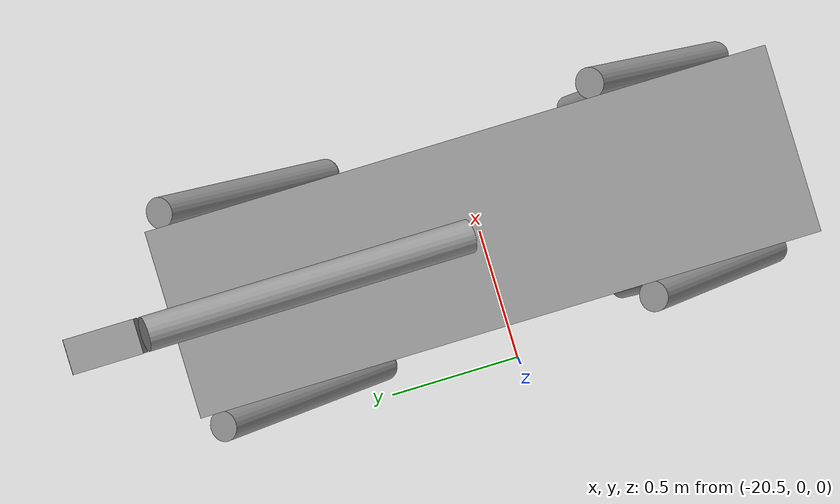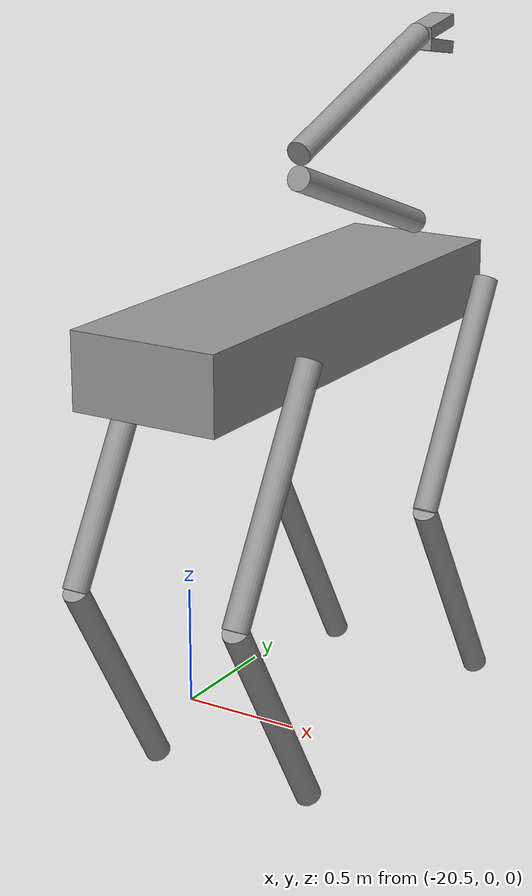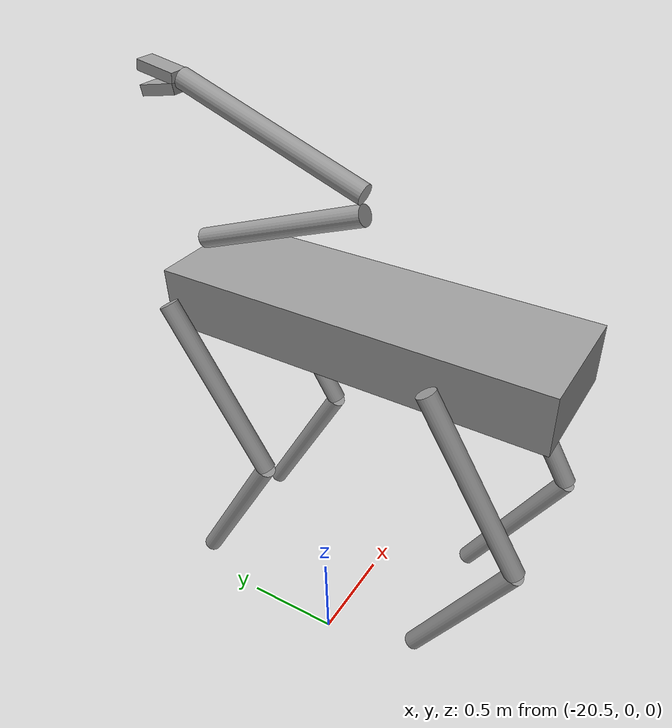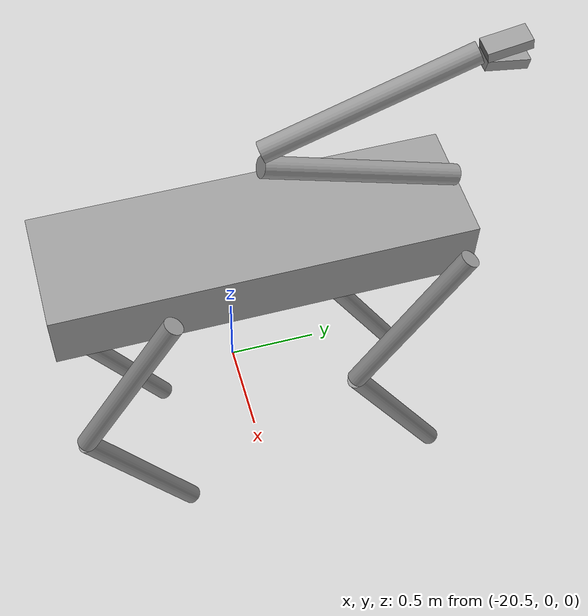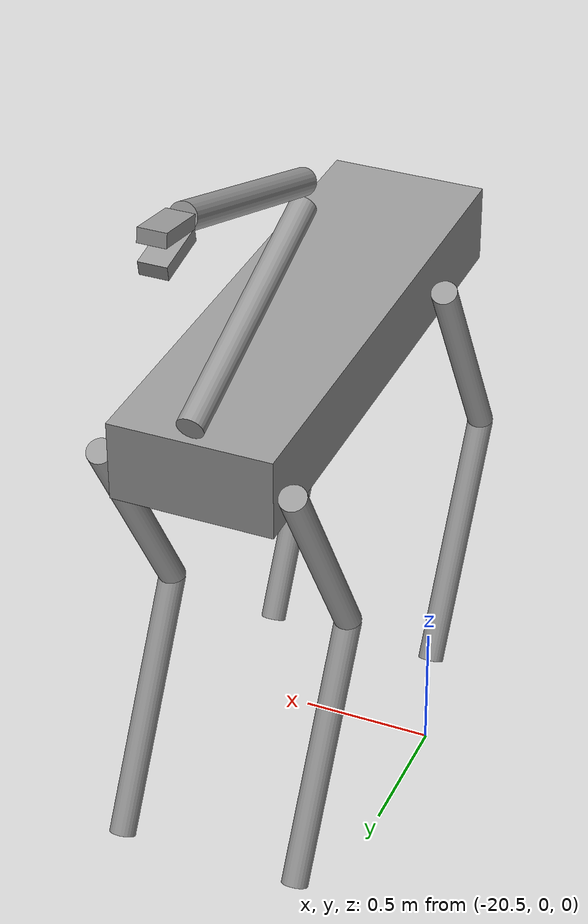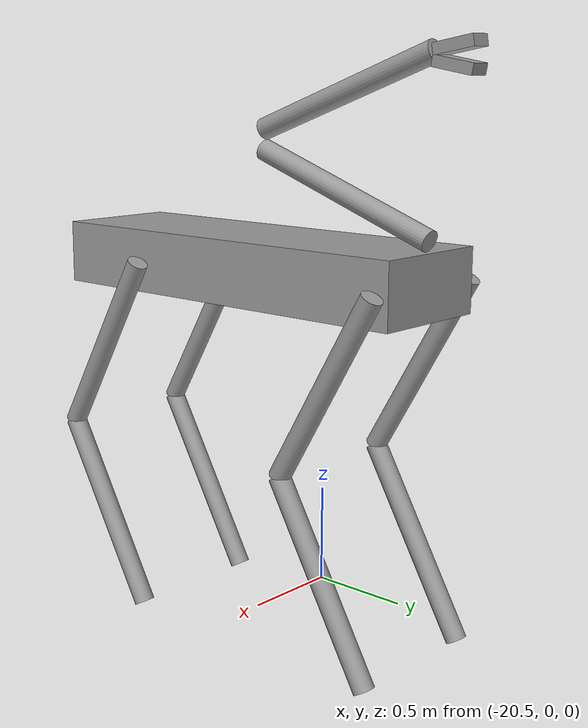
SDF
<?xml version='1.0'?>
<sdf version='1.6'>
  <model name='dog'>
    <link name='link_0_clone'>
      <pose frame=''>-19.65 0.706699 1.29904 -0.523599 0 0</pose>
      <inertial>
        <mass>1</mass>
        <inertia>
          <ixx>0.145833</ixx>
          <ixy>0</ixy>
          <ixz>0</ixz>
          <iyy>0.145833</iyy>
          <iyz>0</iyz>
          <izz>0.125</izz>
        </inertia>
        <pose frame=''>0 0 0 0 -0 0</pose>
      </inertial>
      <self_collide>0</self_collide>
      <kinematic>0</kinematic>
      <gravity>1</gravity>
      <visual name='visual'>
        <pose frame=''>0 0 0 0 -0 0</pose>
        <geometry>
          <cylinder>
            <radius>0.05</radius>
            <length>1</length>
          </cylinder>
        </geometry>
        <material>
          <lighting>1</lighting>
          <script>
            <uri>file://media/materials/scripts/gazebo.material</uri>
            <name>Gazebo/Grey</name>
          </script>
          <shader type='pixel'>
            <normal_map>__default__</normal_map>
          </shader>
          <ambient>0.3 0.3 0.3 1</ambient>
          <diffuse>0.7 0.7 0.7 1</diffuse>
          <specular>0.01 0.01 0.01 1</specular>
          <emissive>0 0 0 1</emissive>
        </material>
        <transparency>0</transparency>
        <cast_shadows>1</cast_shadows>
      </visual>
      <collision name='collision'>
        <laser_retro>0</laser_retro>
        <max_contacts>10</max_contacts>
        <pose frame=''>0 0 0 0 -0 0</pose>
        <geometry>
          <cylinder>
            <radius>0.05</radius>
            <length>1</length>
          </cylinder>
        </geometry>
        <surface>
          <friction>
            <ode>
              <mu>1</mu>
              <mu2>1</mu2>
              <fdir1>0 0 0</fdir1>
              <slip1>0</slip1>
              <slip2>0</slip2>
            </ode>
            <torsional>
              <coefficient>1</coefficient>
              <patch_radius>0</patch_radius>
              <surface_radius>0</surface_radius>
              <use_patch_radius>1</use_patch_radius>
              <ode>
                <slip>0</slip>
              </ode>
            </torsional>
          </friction>
          <bounce>
            <restitution_coefficient>0</restitution_coefficient>
            <threshold>1e+06</threshold>
          </bounce>
          <contact>
            <collide_without_contact>0</collide_without_contact>
            <collide_without_contact_bitmask>1</collide_without_contact_bitmask>
            <collide_bitmask>1</collide_bitmask>
            <ode>
              <soft_cfm>0</soft_cfm>
              <soft_erp>0.2</soft_erp>
              <kp>1e+13</kp>
              <kd>1</kd>
              <max_vel>0.01</max_vel>
              <min_depth>0</min_depth>
            </ode>
            <bullet>
              <split_impulse>1</split_impulse>
              <split_impulse_penetration_threshold>-0.01</split_impulse_penetration_threshold>
              <soft_cfm>0</soft_cfm>
              <soft_erp>0.2</soft_erp>
              <kp>1e+13</kp>
              <kd>1</kd>
            </bullet>
          </contact>
        </surface>
      </collision>
    </link>
    <link name='link_0_clone_0'>
      <pose frame=''>-19.65 0.706699 0.433013 0.523599 -0 0</pose>
      <inertial>
        <mass>1</mass>
        <inertia>
          <ixx>0.145833</ixx>
          <ixy>0</ixy>
          <ixz>0</ixz>
          <iyy>0.145833</iyy>
          <iyz>0</iyz>
          <izz>0.125</izz>
        </inertia>
        <pose frame=''>0 0 0 0 -0 0</pose>
      </inertial>
      <self_collide>0</self_collide>
      <kinematic>0</kinematic>
      <gravity>1</gravity>
      <visual name='visual'>
        <pose frame=''>0 0 0 0 -0 0</pose>
        <geometry>
          <cylinder>
            <radius>0.05</radius>
            <length>1</length>
          </cylinder>
        </geometry>
        <material>
          <lighting>1</lighting>
          <script>
            <uri>file://media/materials/scripts/gazebo.material</uri>
            <name>Gazebo/Grey</name>
          </script>
          <shader type='pixel'>
            <normal_map>__default__</normal_map>
          </shader>
          <ambient>0.3 0.3 0.3 1</ambient>
          <diffuse>0.7 0.7 0.7 1</diffuse>
          <specular>0.01 0.01 0.01 1</specular>
          <emissive>0 0 0 1</emissive>
        </material>
        <transparency>0</transparency>
        <cast_shadows>1</cast_shadows>
      </visual>
      <collision name='collision'>
        <laser_retro>0</laser_retro>
        <max_contacts>10</max_contacts>
        <pose frame=''>0 0 0 0 -0 0</pose>
        <geometry>
          <cylinder>
            <radius>0.05</radius>
            <length>1</length>
          </cylinder>
        </geometry>
        <surface>
          <friction>
            <ode>
              <mu>1</mu>
              <mu2>1</mu2>
              <fdir1>0 0 0</fdir1>
              <slip1>0</slip1>
              <slip2>0</slip2>
            </ode>
            <torsional>
              <coefficient>1</coefficient>
              <patch_radius>0</patch_radius>
              <surface_radius>0</surface_radius>
              <use_patch_radius>1</use_patch_radius>
              <ode>
                <slip>0</slip>
              </ode>
            </torsional>
          </friction>
          <bounce>
            <restitution_coefficient>0</restitution_coefficient>
            <threshold>1e+06</threshold>
          </bounce>
          <contact>
            <collide_without_contact>0</collide_without_contact>
            <collide_without_contact_bitmask>1</collide_without_contact_bitmask>
            <collide_bitmask>1</collide_bitmask>
            <ode>
              <soft_cfm>0</soft_cfm>
              <soft_erp>0.2</soft_erp>
              <kp>1e+13</kp>
              <kd>1</kd>
              <max_vel>0.01</max_vel>
              <min_depth>0</min_depth>
            </ode>
            <bullet>
              <split_impulse>1</split_impulse>
              <split_impulse_penetration_threshold>-0.01</split_impulse_penetration_threshold>
              <soft_cfm>0</soft_cfm>
              <soft_erp>0.2</soft_erp>
              <kp>1e+13</kp>
              <kd>1</kd>
            </bullet>
          </contact>
        </surface>
      </collision>
    </link>
    <link name='link_0_clone_0_clone'>
      <pose frame=''>-20.35 -0.706699 0.433013 0.523599 -0 0</pose>
      <inertial>
        <mass>1</mass>
        <inertia>
          <ixx>0.145833</ixx>
          <ixy>0</ixy>
          <ixz>0</ixz>
          <iyy>0.145833</iyy>
          <iyz>0</iyz>
          <izz>0.125</izz>
        </inertia>
        <pose frame=''>0 0 0 0 -0 0</pose>
      </inertial>
      <self_collide>0</self_collide>
      <kinematic>0</kinematic>
      <visual name='visual'>
        <pose frame=''>0 0 0 0 -0 0</pose>
        <geometry>
          <cylinder>
            <radius>0.05</radius>
            <length>1</length>
          </cylinder>
        </geometry>
        <material>
          <lighting>1</lighting>
          <script>
            <uri>file://media/materials/scripts/gazebo.material</uri>
            <name>Gazebo/Grey</name>
          </script>
          <shader type='pixel'>
            <normal_map>__default__</normal_map>
          </shader>
          <ambient>0.3 0.3 0.3 1</ambient>
          <diffuse>0.7 0.7 0.7 1</diffuse>
          <specular>0.01 0.01 0.01 1</specular>
          <emissive>0 0 0 1</emissive>
        </material>
        <transparency>0</transparency>
        <cast_shadows>1</cast_shadows>
      </visual>
      <collision name='collision'>
        <laser_retro>0</laser_retro>
        <max_contacts>10</max_contacts>
        <pose frame=''>0 0 0 0 -0 0</pose>
        <geometry>
          <cylinder>
            <radius>0.05</radius>
            <length>1</length>
          </cylinder>
        </geometry>
        <surface>
          <friction>
            <ode>
              <mu>1</mu>
              <mu2>1</mu2>
              <fdir1>0 0 0</fdir1>
              <slip1>0</slip1>
              <slip2>0</slip2>
            </ode>
            <torsional>
              <coefficient>1</coefficient>
              <patch_radius>0</patch_radius>
              <surface_radius>0</surface_radius>
              <use_patch_radius>1</use_patch_radius>
              <ode>
                <slip>0</slip>
              </ode>
            </torsional>
          </friction>
          <bounce>
            <restitution_coefficient>0</restitution_coefficient>
            <threshold>1e+06</threshold>
          </bounce>
          <contact>
            <collide_without_contact>0</collide_without_contact>
            <collide_without_contact_bitmask>1</collide_without_contact_bitmask>
            <collide_bitmask>1</collide_bitmask>
            <ode>
              <soft_cfm>0</soft_cfm>
              <soft_erp>0.2</soft_erp>
              <kp>1e+13</kp>
              <kd>1</kd>
              <max_vel>0.01</max_vel>
              <min_depth>0</min_depth>
            </ode>
            <bullet>
              <split_impulse>1</split_impulse>
              <split_impulse_penetration_threshold>-0.01</split_impulse_penetration_threshold>
              <soft_cfm>0</soft_cfm>
              <soft_erp>0.2</soft_erp>
              <kp>1e+13</kp>
              <kd>1</kd>
            </bullet>
          </contact>
        </surface>
      </collision>
    </link>
    <link name='link_0_clone_0_clone_0'>
      <pose frame=''>-19.65 -0.706699 0.433013 0.523599 -0 0</pose>
      <inertial>
        <mass>1</mass>
        <inertia>
          <ixx>0.145833</ixx>
          <ixy>0</ixy>
          <ixz>0</ixz>
          <iyy>0.145833</iyy>
          <iyz>0</iyz>
          <izz>0.125</izz>
        </inertia>
        <pose frame=''>0 0 0 0 -0 0</pose>
      </inertial>
      <self_collide>0</self_collide>
      <kinematic>0</kinematic>
      <visual name='visual'>
        <pose frame=''>0 0 0 0 -0 0</pose>
        <geometry>
          <cylinder>
            <radius>0.05</radius>
            <length>1</length>
          </cylinder>
        </geometry>
        <material>
          <lighting>1</lighting>
          <script>
            <uri>file://media/materials/scripts/gazebo.material</uri>
            <name>Gazebo/Grey</name>
          </script>
          <shader type='pixel'>
            <normal_map>__default__</normal_map>
          </shader>
          <ambient>0.3 0.3 0.3 1</ambient>
          <diffuse>0.7 0.7 0.7 1</diffuse>
          <specular>0.01 0.01 0.01 1</specular>
          <emissive>0 0 0 1</emissive>
        </material>
        <transparency>0</transparency>
        <cast_shadows>1</cast_shadows>
      </visual>
      <collision name='collision'>
        <laser_retro>0</laser_retro>
        <max_contacts>10</max_contacts>
        <pose frame=''>0 0 0 0 -0 0</pose>
        <geometry>
          <cylinder>
            <radius>0.05</radius>
            <length>1</length>
          </cylinder>
        </geometry>
        <surface>
          <friction>
            <ode>
              <mu>1</mu>
              <mu2>1</mu2>
              <fdir1>0 0 0</fdir1>
              <slip1>0</slip1>
              <slip2>0</slip2>
            </ode>
            <torsional>
              <coefficient>1</coefficient>
              <patch_radius>0</patch_radius>
              <surface_radius>0</surface_radius>
              <use_patch_radius>1</use_patch_radius>
              <ode>
                <slip>0</slip>
              </ode>
            </torsional>
          </friction>
          <bounce>
            <restitution_coefficient>0</restitution_coefficient>
            <threshold>1e+06</threshold>
          </bounce>
          <contact>
            <collide_without_contact>0</collide_without_contact>
            <collide_without_contact_bitmask>1</collide_without_contact_bitmask>
            <collide_bitmask>1</collide_bitmask>
            <ode>
              <soft_cfm>0</soft_cfm>
              <soft_erp>0.2</soft_erp>
              <kp>1e+13</kp>
              <kd>1</kd>
              <max_vel>0.01</max_vel>
              <min_depth>0</min_depth>
            </ode>
            <bullet>
              <split_impulse>1</split_impulse>
              <split_impulse_penetration_threshold>-0.01</split_impulse_penetration_threshold>
              <soft_cfm>0</soft_cfm>
              <soft_erp>0.2</soft_erp>
              <kp>1e+13</kp>
              <kd>1</kd>
            </bullet>
          </contact>
        </surface>
      </collision>
    </link>
    <link name='link_0_clone_0_clone_1'>
      <pose frame=''>-20.35 0.706699 0.433013 0.523599 -0 0</pose>
      <inertial>
        <mass>1</mass>
        <inertia>
          <ixx>0.145833</ixx>
          <ixy>0</ixy>
          <ixz>0</ixz>
          <iyy>0.145833</iyy>
          <iyz>0</iyz>
          <izz>0.125</izz>
        </inertia>
        <pose frame=''>0 0 0 0 -0 0</pose>
      </inertial>
      <self_collide>0</self_collide>
      <kinematic>0</kinematic>
      <visual name='visual'>
        <pose frame=''>0 0 0 0 -0 0</pose>
        <geometry>
          <cylinder>
            <radius>0.05</radius>
            <length>1</length>
          </cylinder>
        </geometry>
        <material>
          <lighting>1</lighting>
          <script>
            <uri>file://media/materials/scripts/gazebo.material</uri>
            <name>Gazebo/Grey</name>
          </script>
          <shader type='pixel'>
            <normal_map>__default__</normal_map>
          </shader>
          <ambient>0.3 0.3 0.3 1</ambient>
          <diffuse>0.7 0.7 0.7 1</diffuse>
          <specular>0.01 0.01 0.01 1</specular>
          <emissive>0 0 0 1</emissive>
        </material>
        <transparency>0</transparency>
        <cast_shadows>1</cast_shadows>
      </visual>
      <collision name='collision'>
        <laser_retro>0</laser_retro>
        <max_contacts>10</max_contacts>
        <pose frame=''>0 0 0 0 -0 0</pose>
        <geometry>
          <cylinder>
            <radius>0.05</radius>
            <length>1</length>
          </cylinder>
        </geometry>
        <surface>
          <friction>
            <ode>
              <mu>1</mu>
              <mu2>1</mu2>
              <fdir1>0 0 0</fdir1>
              <slip1>0</slip1>
              <slip2>0</slip2>
            </ode>
            <torsional>
              <coefficient>1</coefficient>
              <patch_radius>0</patch_radius>
              <surface_radius>0</surface_radius>
              <use_patch_radius>1</use_patch_radius>
              <ode>
                <slip>0</slip>
              </ode>
            </torsional>
          </friction>
          <bounce>
            <restitution_coefficient>0</restitution_coefficient>
            <threshold>1e+06</threshold>
          </bounce>
          <contact>
            <collide_without_contact>0</collide_without_contact>
            <collide_without_contact_bitmask>1</collide_without_contact_bitmask>
            <collide_bitmask>1</collide_bitmask>
            <ode>
              <soft_cfm>0</soft_cfm>
              <soft_erp>0.2</soft_erp>
              <kp>1e+13</kp>
              <kd>1</kd>
              <max_vel>0.01</max_vel>
              <min_depth>0</min_depth>
            </ode>
            <bullet>
              <split_impulse>1</split_impulse>
              <split_impulse_penetration_threshold>-0.01</split_impulse_penetration_threshold>
              <soft_cfm>0</soft_cfm>
              <soft_erp>0.2</soft_erp>
              <kp>1e+13</kp>
              <kd>1</kd>
            </bullet>
          </contact>
        </surface>
      </collision>
    </link>
    <link name='link_0_clone_0_clone_clone'>
      <pose frame=''>-20 0.513053 2.10004 1.22173 -0 0</pose>
      <inertial>
        <mass>1</mass>
        <inertia>
          <ixx>0.145833</ixx>
          <ixy>0</ixy>
          <ixz>0</ixz>
          <iyy>0.145833</iyy>
          <iyz>0</iyz>
          <izz>0.125</izz>
        </inertia>
        <pose frame=''>0 0 0 0 -0 0</pose>
      </inertial>
      <self_collide>0</self_collide>
      <kinematic>0</kinematic>
      <gravity>1</gravity>
      <visual name='visual'>
        <pose frame=''>0 0 0 0 -0 0</pose>
        <geometry>
          <cylinder>
            <radius>0.05</radius>
            <length>1</length>
          </cylinder>
        </geometry>
        <material>
          <lighting>1</lighting>
          <script>
            <uri>file://media/materials/scripts/gazebo.material</uri>
            <name>Gazebo/Grey</name>
          </script>
          <shader type='pixel'>
            <normal_map>__default__</normal_map>
          </shader>
          <ambient>0.3 0.3 0.3 1</ambient>
          <diffuse>0.7 0.7 0.7 1</diffuse>
          <specular>0.01 0.01 0.01 1</specular>
          <emissive>0 0 0 1</emissive>
        </material>
        <transparency>0</transparency>
        <cast_shadows>1</cast_shadows>
      </visual>
      <collision name='collision'>
        <laser_retro>0</laser_retro>
        <max_contacts>10</max_contacts>
        <pose frame=''>0 0 0 0 -0 0</pose>
        <geometry>
          <cylinder>
            <radius>0.05</radius>
            <length>1</length>
          </cylinder>
        </geometry>
        <surface>
          <friction>
            <ode>
              <mu>1</mu>
              <mu2>1</mu2>
              <fdir1>0 0 0</fdir1>
              <slip1>0</slip1>
              <slip2>0</slip2>
            </ode>
            <torsional>
              <coefficient>1</coefficient>
              <patch_radius>0</patch_radius>
              <surface_radius>0</surface_radius>
              <use_patch_radius>1</use_patch_radius>
              <ode>
                <slip>0</slip>
              </ode>
            </torsional>
          </friction>
          <bounce>
            <restitution_coefficient>0</restitution_coefficient>
            <threshold>1e+06</threshold>
          </bounce>
          <contact>
            <collide_without_contact>0</collide_without_contact>
            <collide_without_contact_bitmask>1</collide_without_contact_bitmask>
            <collide_bitmask>1</collide_bitmask>
            <ode>
              <soft_cfm>0</soft_cfm>
              <soft_erp>0.2</soft_erp>
              <kp>1e+13</kp>
              <kd>1</kd>
              <max_vel>0.01</max_vel>
              <min_depth>0</min_depth>
            </ode>
            <bullet>
              <split_impulse>1</split_impulse>
              <split_impulse_penetration_threshold>-0.01</split_impulse_penetration_threshold>
              <soft_cfm>0</soft_cfm>
              <soft_erp>0.2</soft_erp>
              <kp>1e+13</kp>
              <kd>1</kd>
            </bullet>
          </contact>
        </surface>
      </collision>
    </link>
    <link name='link_0_clone_clone'>
      <pose frame=''>-20.35 -0.706699 1.29904 -0.523599 0 0</pose>
      <inertial>
        <mass>1</mass>
        <inertia>
          <ixx>0.145833</ixx>
          <ixy>0</ixy>
          <ixz>0</ixz>
          <iyy>0.145833</iyy>
          <iyz>0</iyz>
          <izz>0.125</izz>
        </inertia>
        <pose frame=''>0 0 0 0 -0 0</pose>
      </inertial>
      <self_collide>0</self_collide>
      <kinematic>0</kinematic>
      <visual name='visual'>
        <pose frame=''>0 0 0 0 -0 0</pose>
        <geometry>
          <cylinder>
            <radius>0.05</radius>
            <length>1</length>
          </cylinder>
        </geometry>
        <material>
          <lighting>1</lighting>
          <script>
            <uri>file://media/materials/scripts/gazebo.material</uri>
            <name>Gazebo/Grey</name>
          </script>
          <shader type='pixel'>
            <normal_map>__default__</normal_map>
          </shader>
          <ambient>0.3 0.3 0.3 1</ambient>
          <diffuse>0.7 0.7 0.7 1</diffuse>
          <specular>0.01 0.01 0.01 1</specular>
          <emissive>0 0 0 1</emissive>
        </material>
        <transparency>0</transparency>
        <cast_shadows>1</cast_shadows>
      </visual>
      <collision name='collision'>
        <laser_retro>0</laser_retro>
        <max_contacts>10</max_contacts>
        <pose frame=''>0 0 0 0 -0 0</pose>
        <geometry>
          <cylinder>
            <radius>0.05</radius>
            <length>1</length>
          </cylinder>
        </geometry>
        <surface>
          <friction>
            <ode>
              <mu>1</mu>
              <mu2>1</mu2>
              <fdir1>0 0 0</fdir1>
              <slip1>0</slip1>
              <slip2>0</slip2>
            </ode>
            <torsional>
              <coefficient>1</coefficient>
              <patch_radius>0</patch_radius>
              <surface_radius>0</surface_radius>
              <use_patch_radius>1</use_patch_radius>
              <ode>
                <slip>0</slip>
              </ode>
            </torsional>
          </friction>
          <bounce>
            <restitution_coefficient>0</restitution_coefficient>
            <threshold>1e+06</threshold>
          </bounce>
          <contact>
            <collide_without_contact>0</collide_without_contact>
            <collide_without_contact_bitmask>1</collide_without_contact_bitmask>
            <collide_bitmask>1</collide_bitmask>
            <ode>
              <soft_cfm>0</soft_cfm>
              <soft_erp>0.2</soft_erp>
              <kp>1e+13</kp>
              <kd>1</kd>
              <max_vel>0.01</max_vel>
              <min_depth>0</min_depth>
            </ode>
            <bullet>
              <split_impulse>1</split_impulse>
              <split_impulse_penetration_threshold>-0.01</split_impulse_penetration_threshold>
              <soft_cfm>0</soft_cfm>
              <soft_erp>0.2</soft_erp>
              <kp>1e+13</kp>
              <kd>1</kd>
            </bullet>
          </contact>
        </surface>
      </collision>
    </link>
    <link name='link_0_clone_clone_0'>
      <pose frame=''>-19.65 -0.706699 1.29904 -0.523599 0 0</pose>
      <inertial>
        <mass>1</mass>
        <inertia>
          <ixx>0.145833</ixx>
          <ixy>0</ixy>
          <ixz>0</ixz>
          <iyy>0.145833</iyy>
          <iyz>0</iyz>
          <izz>0.125</izz>
        </inertia>
        <pose frame=''>0 0 0 0 -0 0</pose>
      </inertial>
      <self_collide>0</self_collide>
      <kinematic>0</kinematic>
      <visual name='visual'>
        <pose frame=''>0 0 0 0 -0 0</pose>
        <geometry>
          <cylinder>
            <radius>0.05</radius>
            <length>1</length>
          </cylinder>
        </geometry>
        <material>
          <lighting>1</lighting>
          <script>
            <uri>file://media/materials/scripts/gazebo.material</uri>
            <name>Gazebo/Grey</name>
          </script>
          <shader type='pixel'>
            <normal_map>__default__</normal_map>
          </shader>
          <ambient>0.3 0.3 0.3 1</ambient>
          <diffuse>0.7 0.7 0.7 1</diffuse>
          <specular>0.01 0.01 0.01 1</specular>
          <emissive>0 0 0 1</emissive>
        </material>
        <transparency>0</transparency>
        <cast_shadows>1</cast_shadows>
      </visual>
      <collision name='collision'>
        <laser_retro>0</laser_retro>
        <max_contacts>10</max_contacts>
        <pose frame=''>0 0 0 0 -0 0</pose>
        <geometry>
          <cylinder>
            <radius>0.05</radius>
            <length>1</length>
          </cylinder>
        </geometry>
        <surface>
          <friction>
            <ode>
              <mu>1</mu>
              <mu2>1</mu2>
              <fdir1>0 0 0</fdir1>
              <slip1>0</slip1>
              <slip2>0</slip2>
            </ode>
            <torsional>
              <coefficient>1</coefficient>
              <patch_radius>0</patch_radius>
              <surface_radius>0</surface_radius>
              <use_patch_radius>1</use_patch_radius>
              <ode>
                <slip>0</slip>
              </ode>
            </torsional>
          </friction>
          <bounce>
            <restitution_coefficient>0</restitution_coefficient>
            <threshold>1e+06</threshold>
          </bounce>
          <contact>
            <collide_without_contact>0</collide_without_contact>
            <collide_without_contact_bitmask>1</collide_without_contact_bitmask>
            <collide_bitmask>1</collide_bitmask>
            <ode>
              <soft_cfm>0</soft_cfm>
              <soft_erp>0.2</soft_erp>
              <kp>1e+13</kp>
              <kd>1</kd>
              <max_vel>0.01</max_vel>
              <min_depth>0</min_depth>
            </ode>
            <bullet>
              <split_impulse>1</split_impulse>
              <split_impulse_penetration_threshold>-0.01</split_impulse_penetration_threshold>
              <soft_cfm>0</soft_cfm>
              <soft_erp>0.2</soft_erp>
              <kp>1e+13</kp>
              <kd>1</kd>
            </bullet>
          </contact>
        </surface>
      </collision>
    </link>
    <link name='link_0_clone_clone_1'>
      <pose frame=''>-20.35 0.706699 1.29904 -0.523599 0 0</pose>
      <inertial>
        <mass>1</mass>
        <inertia>
          <ixx>0.145833</ixx>
          <ixy>0</ixy>
          <ixz>0</ixz>
          <iyy>0.145833</iyy>
          <iyz>0</iyz>
          <izz>0.125</izz>
        </inertia>
        <pose frame=''>0 0 0 0 -0 0</pose>
      </inertial>
      <self_collide>0</self_collide>
      <kinematic>0</kinematic>
      <visual name='visual'>
        <pose frame=''>0 0 0 0 -0 0</pose>
        <geometry>
          <cylinder>
            <radius>0.05</radius>
            <length>1</length>
          </cylinder>
        </geometry>
        <material>
          <lighting>1</lighting>
          <script>
            <uri>file://media/materials/scripts/gazebo.material</uri>
            <name>Gazebo/Grey</name>
          </script>
          <shader type='pixel'>
            <normal_map>__default__</normal_map>
          </shader>
          <ambient>0.3 0.3 0.3 1</ambient>
          <diffuse>0.7 0.7 0.7 1</diffuse>
          <specular>0.01 0.01 0.01 1</specular>
          <emissive>0 0 0 1</emissive>
        </material>
        <transparency>0</transparency>
        <cast_shadows>1</cast_shadows>
      </visual>
      <collision name='collision'>
        <laser_retro>0</laser_retro>
        <max_contacts>10</max_contacts>
        <pose frame=''>0 0 0 0 -0 0</pose>
        <geometry>
          <cylinder>
            <radius>0.05</radius>
            <length>1</length>
          </cylinder>
        </geometry>
        <surface>
          <friction>
            <ode>
              <mu>1</mu>
              <mu2>1</mu2>
              <fdir1>0 0 0</fdir1>
              <slip1>0</slip1>
              <slip2>0</slip2>
            </ode>
            <torsional>
              <coefficient>1</coefficient>
              <patch_radius>0</patch_radius>
              <surface_radius>0</surface_radius>
              <use_patch_radius>1</use_patch_radius>
              <ode>
                <slip>0</slip>
              </ode>
            </torsional>
          </friction>
          <bounce>
            <restitution_coefficient>0</restitution_coefficient>
            <threshold>1e+06</threshold>
          </bounce>
          <contact>
            <collide_without_contact>0</collide_without_contact>
            <collide_without_contact_bitmask>1</collide_without_contact_bitmask>
            <collide_bitmask>1</collide_bitmask>
            <ode>
              <soft_cfm>0</soft_cfm>
              <soft_erp>0.2</soft_erp>
              <kp>1e+13</kp>
              <kd>1</kd>
              <max_vel>0.01</max_vel>
              <min_depth>0</min_depth>
            </ode>
            <bullet>
              <split_impulse>1</split_impulse>
              <split_impulse_penetration_threshold>-0.01</split_impulse_penetration_threshold>
              <soft_cfm>0</soft_cfm>
              <soft_erp>0.2</soft_erp>
              <kp>1e+13</kp>
              <kd>1</kd>
            </bullet>
          </contact>
        </surface>
      </collision>
    </link>
    <link name='link_0_clone_clone_1_clone'>
      <pose frame=''>-20 0.513053 2.53603 -1.22173 0 0</pose>
      <inertial>
        <mass>1</mass>
        <inertia>
          <ixx>0.145833</ixx>
          <ixy>0</ixy>
          <ixz>0</ixz>
          <iyy>0.145833</iyy>
          <iyz>0</iyz>
          <izz>0.125</izz>
        </inertia>
        <pose frame=''>0 0 0 0 -0 0</pose>
      </inertial>
      <self_collide>0</self_collide>
      <kinematic>0</kinematic>
      <gravity>1</gravity>
      <visual name='visual'>
        <pose frame=''>0 0 0 0 -0 0</pose>
        <geometry>
          <cylinder>
            <radius>0.05</radius>
            <length>1</length>
          </cylinder>
        </geometry>
        <material>
          <lighting>1</lighting>
          <script>
            <uri>file://media/materials/scripts/gazebo.material</uri>
            <name>Gazebo/Grey</name>
          </script>
          <shader type='pixel'>
            <normal_map>__default__</normal_map>
          </shader>
          <ambient>0.3 0.3 0.3 1</ambient>
          <diffuse>0.7 0.7 0.7 1</diffuse>
          <specular>0.01 0.01 0.01 1</specular>
          <emissive>0 0 0 1</emissive>
        </material>
        <transparency>0</transparency>
        <cast_shadows>1</cast_shadows>
      </visual>
      <collision name='collision'>
        <laser_retro>0</laser_retro>
        <max_contacts>10</max_contacts>
        <pose frame=''>0 0 0 0 -0 0</pose>
        <geometry>
          <cylinder>
            <radius>0.05</radius>
            <length>1</length>
          </cylinder>
        </geometry>
        <surface>
          <friction>
            <ode>
              <mu>1</mu>
              <mu2>1</mu2>
              <fdir1>0 0 0</fdir1>
              <slip1>0</slip1>
              <slip2>0</slip2>
            </ode>
            <torsional>
              <coefficient>1</coefficient>
              <patch_radius>0</patch_radius>
              <surface_radius>0</surface_radius>
              <use_patch_radius>1</use_patch_radius>
              <ode>
                <slip>0</slip>
              </ode>
            </torsional>
          </friction>
          <bounce>
            <restitution_coefficient>0</restitution_coefficient>
            <threshold>1e+06</threshold>
          </bounce>
          <contact>
            <collide_without_contact>0</collide_without_contact>
            <collide_without_contact_bitmask>1</collide_without_contact_bitmask>
            <collide_bitmask>1</collide_bitmask>
            <ode>
              <soft_cfm>0</soft_cfm>
              <soft_erp>0.2</soft_erp>
              <kp>1e+13</kp>
              <kd>1</kd>
              <max_vel>0.01</max_vel>
              <min_depth>0</min_depth>
            </ode>
            <bullet>
              <split_impulse>1</split_impulse>
              <split_impulse_penetration_threshold>-0.01</split_impulse_penetration_threshold>
              <soft_cfm>0</soft_cfm>
              <soft_erp>0.2</soft_erp>
              <kp>1e+13</kp>
              <kd>1</kd>
            </bullet>
          </contact>
        </surface>
      </collision>
    </link>
    <link name='link_1'>
      <pose frame=''>-20 0 1.73205 0 -0 0</pose>
      <inertial>
        <mass>1</mass>
        <inertia>
          <ixx>0.166667</ixx>
          <ixy>0</ixy>
          <ixz>0</ixz>
          <iyy>0.166667</iyy>
          <iyz>0</iyz>
          <izz>0.166667</izz>
        </inertia>
        <pose frame=''>0 0 0 0 -0 0</pose>
      </inertial>
      <gravity>1</gravity>
      <self_collide>0</self_collide>
      <kinematic>0</kinematic>
      <visual name='visual'>
        <pose frame=''>0 0 0 0 -0 0</pose>
        <geometry>
          <box>
            <size>0.6 2 0.3</size>
          </box>
        </geometry>
        <material>
          <lighting>1</lighting>
          <script>
            <uri>file://media/materials/scripts/gazebo.material</uri>
            <name>Gazebo/Grey</name>
          </script>
          <shader type='pixel'>
            <normal_map>__default__</normal_map>
          </shader>
          <ambient>0.3 0.3 0.3 1</ambient>
          <diffuse>0.7 0.7 0.7 1</diffuse>
          <specular>0.01 0.01 0.01 1</specular>
          <emissive>0 0 0 1</emissive>
        </material>
        <transparency>0</transparency>
        <cast_shadows>1</cast_shadows>
      </visual>
      <collision name='collision'>
        <laser_retro>0</laser_retro>
        <max_contacts>10</max_contacts>
        <pose frame=''>0 0 0 0 -0 0</pose>
        <geometry>
          <box>
            <size>0.6 2 0.3</size>
          </box>
        </geometry>
        <surface>
          <friction>
            <ode>
              <mu>1</mu>
              <mu2>1</mu2>
              <fdir1>0 0 0</fdir1>
              <slip1>0</slip1>
              <slip2>0</slip2>
            </ode>
            <torsional>
              <coefficient>1</coefficient>
              <patch_radius>0</patch_radius>
              <surface_radius>0</surface_radius>
              <use_patch_radius>1</use_patch_radius>
              <ode>
                <slip>0</slip>
              </ode>
            </torsional>
          </friction>
          <bounce>
            <restitution_coefficient>0</restitution_coefficient>
            <threshold>1e+06</threshold>
          </bounce>
          <contact>
            <collide_without_contact>0</collide_without_contact>
            <collide_without_contact_bitmask>1</collide_without_contact_bitmask>
            <collide_bitmask>1</collide_bitmask>
            <ode>
              <soft_cfm>0</soft_cfm>
              <soft_erp>0.2</soft_erp>
              <kp>1e+13</kp>
              <kd>1</kd>
              <max_vel>0.01</max_vel>
              <min_depth>0</min_depth>
            </ode>
            <bullet>
              <split_impulse>1</split_impulse>
              <split_impulse_penetration_threshold>-0.01</split_impulse_penetration_threshold>
              <soft_cfm>0</soft_cfm>
              <soft_erp>0.2</soft_erp>
              <kp>1e+13</kp>
              <kd>1</kd>
            </bullet>
          </contact>
        </surface>
      </collision>
    </link>
    <link name='link_2_clone'>
      <pose frame=''>-20 1.1 2.65 -0.174533 0 0</pose>
      <inertial>
        <mass>1</mass>
        <inertia>
          <ixx>0.166667</ixx>
          <ixy>0</ixy>
          <ixz>0</ixz>
          <iyy>0.166667</iyy>
          <iyz>0</iyz>
          <izz>0.166667</izz>
        </inertia>
        <pose frame=''>0 0 0 0 -0 0</pose>
      </inertial>
      <self_collide>0</self_collide>
      <kinematic>0</kinematic>
      <gravity>1</gravity>
      <visual name='visual'>
        <pose frame=''>0 0 0 0 -0 0</pose>
        <geometry>
          <box>
            <size>0.1 0.2 0.05</size>
          </box>
        </geometry>
        <material>
          <lighting>1</lighting>
          <script>
            <uri>file://media/materials/scripts/gazebo.material</uri>
            <name>Gazebo/Grey</name>
          </script>
          <shader type='pixel'>
            <normal_map>__default__</normal_map>
          </shader>
          <ambient>0.3 0.3 0.3 1</ambient>
          <diffuse>0.7 0.7 0.7 1</diffuse>
          <specular>0.01 0.01 0.01 1</specular>
          <emissive>0 0 0 1</emissive>
        </material>
        <transparency>0</transparency>
        <cast_shadows>1</cast_shadows>
      </visual>
      <collision name='collision'>
        <laser_retro>0</laser_retro>
        <max_contacts>10</max_contacts>
        <pose frame=''>0 0 0 0 -0 0</pose>
        <geometry>
          <box>
            <size>0.1 0.2 0.05</size>
          </box>
        </geometry>
        <surface>
          <friction>
            <ode>
              <mu>1</mu>
              <mu2>1</mu2>
              <fdir1>0 0 0</fdir1>
              <slip1>0</slip1>
              <slip2>0</slip2>
            </ode>
            <torsional>
              <coefficient>1</coefficient>
              <patch_radius>0</patch_radius>
              <surface_radius>0</surface_radius>
              <use_patch_radius>1</use_patch_radius>
              <ode>
                <slip>0</slip>
              </ode>
            </torsional>
          </friction>
          <bounce>
            <restitution_coefficient>0</restitution_coefficient>
            <threshold>1e+06</threshold>
          </bounce>
          <contact>
            <collide_without_contact>0</collide_without_contact>
            <collide_without_contact_bitmask>1</collide_without_contact_bitmask>
            <collide_bitmask>1</collide_bitmask>
            <ode>
              <soft_cfm>0</soft_cfm>
              <soft_erp>0.2</soft_erp>
              <kp>1e+13</kp>
              <kd>1</kd>
              <max_vel>0.01</max_vel>
              <min_depth>0</min_depth>
            </ode>
            <bullet>
              <split_impulse>1</split_impulse>
              <split_impulse_penetration_threshold>-0.01</split_impulse_penetration_threshold>
              <soft_cfm>0</soft_cfm>
              <soft_erp>0.2</soft_erp>
              <kp>1e+13</kp>
              <kd>1</kd>
            </bullet>
          </contact>
        </surface>
      </collision>
    </link>
    <link name='link_2_clone_clone'>
      <pose frame=''>-20 1.1 2.72903 0.174533 -0 0</pose>
      <inertial>
        <mass>1</mass>
        <inertia>
          <ixx>0.166667</ixx>
          <ixy>0</ixy>
          <ixz>0</ixz>
          <iyy>0.166667</iyy>
          <iyz>0</iyz>
          <izz>0.166667</izz>
        </inertia>
        <pose frame=''>0 0 0 0 -0 0</pose>
      </inertial>
      <self_collide>0</self_collide>
      <kinematic>0</kinematic>
      <gravity>1</gravity>
      <visual name='visual'>
        <pose frame=''>0 0 0 0 -0 0</pose>
        <geometry>
          <box>
            <size>0.1 0.2 0.05</size>
          </box>
        </geometry>
        <material>
          <lighting>1</lighting>
          <script>
            <uri>file://media/materials/scripts/gazebo.material</uri>
            <name>Gazebo/Grey</name>
          </script>
          <shader type='pixel'>
            <normal_map>__default__</normal_map>
          </shader>
          <ambient>0.3 0.3 0.3 1</ambient>
          <diffuse>0.7 0.7 0.7 1</diffuse>
          <specular>0.01 0.01 0.01 1</specular>
          <emissive>0 0 0 1</emissive>
        </material>
        <transparency>0</transparency>
        <cast_shadows>1</cast_shadows>
      </visual>
      <collision name='collision'>
        <laser_retro>0</laser_retro>
        <max_contacts>10</max_contacts>
        <pose frame=''>0 0 0 0 -0 0</pose>
        <geometry>
          <box>
            <size>0.1 0.2 0.05</size>
          </box>
        </geometry>
        <surface>
          <friction>
            <ode>
              <mu>1</mu>
              <mu2>1</mu2>
              <fdir1>0 0 0</fdir1>
              <slip1>0</slip1>
              <slip2>0</slip2>
            </ode>
            <torsional>
              <coefficient>1</coefficient>
              <patch_radius>0</patch_radius>
              <surface_radius>0</surface_radius>
              <use_patch_radius>1</use_patch_radius>
              <ode>
                <slip>0</slip>
              </ode>
            </torsional>
          </friction>
          <bounce>
            <restitution_coefficient>0</restitution_coefficient>
            <threshold>1e+06</threshold>
          </bounce>
          <contact>
            <collide_without_contact>0</collide_without_contact>
            <collide_without_contact_bitmask>1</collide_without_contact_bitmask>
            <collide_bitmask>1</collide_bitmask>
            <ode>
              <soft_cfm>0</soft_cfm>
              <soft_erp>0.2</soft_erp>
              <kp>1e+13</kp>
              <kd>1</kd>
              <max_vel>0.01</max_vel>
              <min_depth>0</min_depth>
            </ode>
            <bullet>
              <split_impulse>1</split_impulse>
              <split_impulse_penetration_threshold>-0.01</split_impulse_penetration_threshold>
              <soft_cfm>0</soft_cfm>
              <soft_erp>0.2</soft_erp>
              <kp>1e+13</kp>
              <kd>1</kd>
            </bullet>
          </contact>
        </surface>
      </collision>
    </link>
    <joint name='link_0_clone_0_clone_clone_JOINT_15' type='revolute'>
      <parent>link_0_clone_0_clone_clone</parent>
      <child>link_0_clone_clone_1_clone</child>
      <pose frame=''>0 0 0 0 -0 0</pose>
      <axis>
        <xyz>1 0 0</xyz>
        <use_parent_model_frame>0</use_parent_model_frame>
        <limit>
          <lower>-1.79769e+308</lower>
          <upper>1.79769e+308</upper>
          <effort>-1</effort>
          <velocity>-1</velocity>
        </limit>
        <dynamics>
          <spring_reference>0</spring_reference>
          <spring_stiffness>0</spring_stiffness>
          <damping>0</damping>
        </dynamics>
      </axis>
      <physics>
        <ode>
          <limit>
            <cfm>0</cfm>
            <erp>0.2</erp>
          </limit>
          <suspension>
            <cfm>0</cfm>
            <erp>0.2</erp>
          </suspension>
        </ode>
      </physics>
    </joint>
    <joint name='link_0_clone_JOINT_7' type='revolute'>
      <parent>link_0_clone</parent>
      <child>link_0_clone_0</child>
      <pose frame=''>0 0 0 0 -0 0</pose>
      <axis>
        <xyz>1 0 0</xyz>
        <use_parent_model_frame>0</use_parent_model_frame>
        <limit>
          <lower>-1.79769e+308</lower>
          <upper>1.79769e+308</upper>
          <effort>-1</effort>
          <velocity>-1</velocity>
        </limit>
        <dynamics>
          <spring_reference>0</spring_reference>
          <spring_stiffness>0</spring_stiffness>
          <damping>0</damping>
        </dynamics>
      </axis>
      <physics>
        <ode>
          <limit>
            <cfm>0</cfm>
            <erp>0.2</erp>
          </limit>
          <suspension>
            <cfm>0</cfm>
            <erp>0.2</erp>
          </suspension>
        </ode>
      </physics>
    </joint>
    <joint name='link_0_clone_clone_0_JOINT_11' type='revolute'>
      <parent>link_0_clone_clone_0</parent>
      <child>link_0_clone_0_clone_0</child>
      <pose frame=''>0 0 0 0 -0 0</pose>
      <axis>
        <xyz>1 0 0</xyz>
        <use_parent_model_frame>0</use_parent_model_frame>
        <limit>
          <lower>-1.79769e+308</lower>
          <upper>1.79769e+308</upper>
          <effort>-1</effort>
          <velocity>-1</velocity>
        </limit>
        <dynamics>
          <spring_reference>0</spring_reference>
          <spring_stiffness>0</spring_stiffness>
          <damping>0</damping>
        </dynamics>
      </axis>
      <physics>
        <ode>
          <limit>
            <cfm>0</cfm>
            <erp>0.2</erp>
          </limit>
          <suspension>
            <cfm>0</cfm>
            <erp>0.2</erp>
          </suspension>
        </ode>
      </physics>
    </joint>
    <joint name='link_0_clone_clone_1_JOINT_9' type='revolute'>
      <parent>link_0_clone_clone_1</parent>
      <child>link_0_clone_0_clone_1</child>
      <pose frame=''>0 0 0 0 -0 0</pose>
      <axis>
        <xyz>1 0 0</xyz>
        <use_parent_model_frame>0</use_parent_model_frame>
        <limit>
          <lower>-1.79769e+308</lower>
          <upper>1.79769e+308</upper>
          <effort>-1</effort>
          <velocity>-1</velocity>
        </limit>
        <dynamics>
          <spring_reference>0</spring_reference>
          <spring_stiffness>0</spring_stiffness>
          <damping>0</damping>
        </dynamics>
      </axis>
      <physics>
        <ode>
          <limit>
            <cfm>0</cfm>
            <erp>0.2</erp>
          </limit>
          <suspension>
            <cfm>0</cfm>
            <erp>0.2</erp>
          </suspension>
        </ode>
      </physics>
    </joint>
    <joint name='link_0_clone_clone_1_clone_JOINT_18' type='revolute'>
      <parent>link_0_clone_clone_1_clone</parent>
      <child>link_2_clone</child>
      <pose frame=''>0 0 0 0 -0 0</pose>
      <axis>
        <xyz>1 0 0</xyz>
        <use_parent_model_frame>0</use_parent_model_frame>
        <limit>
          <lower>-1.79769e+308</lower>
          <upper>1.79769e+308</upper>
          <effort>-1</effort>
          <velocity>-1</velocity>
        </limit>
        <dynamics>
          <spring_reference>0</spring_reference>
          <spring_stiffness>0</spring_stiffness>
          <damping>0</damping>
        </dynamics>
      </axis>
      <physics>
        <ode>
          <limit>
            <cfm>0</cfm>
            <erp>0.2</erp>
          </limit>
          <suspension>
            <cfm>0</cfm>
            <erp>0.2</erp>
          </suspension>
        </ode>
      </physics>
    </joint>
    <joint name='link_0_clone_clone_1_clone_JOINT_19' type='revolute'>
      <parent>link_0_clone_clone_1_clone</parent>
      <child>link_2_clone_clone</child>
      <pose frame=''>0 0 0 0 -0 0</pose>
      <axis>
        <xyz>1 0 0</xyz>
        <use_parent_model_frame>0</use_parent_model_frame>
        <limit>
          <lower>-1.79769e+308</lower>
          <upper>1.79769e+308</upper>
          <effort>-1</effort>
          <velocity>-1</velocity>
        </limit>
        <dynamics>
          <spring_reference>0</spring_reference>
          <spring_stiffness>0</spring_stiffness>
          <damping>0</damping>
        </dynamics>
      </axis>
      <physics>
        <ode>
          <limit>
            <cfm>0</cfm>
            <erp>0.2</erp>
          </limit>
          <suspension>
            <cfm>0</cfm>
            <erp>0.2</erp>
          </suspension>
        </ode>
      </physics>
    </joint>
    <joint name='link_0_clone_clone_JOINT_13' type='revolute'>
      <parent>link_0_clone_clone</parent>
      <child>link_0_clone_0_clone</child>
      <pose frame=''>0 0 0 0 -0 0</pose>
      <axis>
        <xyz>1 0 0</xyz>
        <use_parent_model_frame>0</use_parent_model_frame>
        <limit>
          <lower>-1.79769e+308</lower>
          <upper>1.79769e+308</upper>
          <effort>-1</effort>
          <velocity>-1</velocity>
        </limit>
        <dynamics>
          <spring_reference>0</spring_reference>
          <spring_stiffness>0</spring_stiffness>
          <damping>0</damping>
        </dynamics>
      </axis>
      <physics>
        <ode>
          <limit>
            <cfm>0</cfm>
            <erp>0.2</erp>
          </limit>
          <suspension>
            <cfm>0</cfm>
            <erp>0.2</erp>
          </suspension>
        </ode>
      </physics>
    </joint>
    <joint name='link_1_JOINT_10' type='revolute'>
      <parent>link_1</parent>
      <child>link_0_clone_clone_0</child>
      <pose frame=''>0 0 0 0 -0 0</pose>
      <axis>
        <xyz>1 0 0</xyz>
        <use_parent_model_frame>0</use_parent_model_frame>
        <limit>
          <lower>-1.79769e+308</lower>
          <upper>1.79769e+308</upper>
          <effort>-1</effort>
          <velocity>-1</velocity>
        </limit>
        <dynamics>
          <spring_reference>0</spring_reference>
          <spring_stiffness>0</spring_stiffness>
          <damping>0</damping>
        </dynamics>
      </axis>
      <physics>
        <ode>
          <limit>
            <cfm>0</cfm>
            <erp>0.2</erp>
          </limit>
          <suspension>
            <cfm>0</cfm>
            <erp>0.2</erp>
          </suspension>
        </ode>
      </physics>
    </joint>
    <joint name='link_1_JOINT_12' type='revolute'>
      <parent>link_1</parent>
      <child>link_0_clone_clone</child>
      <pose frame=''>0 0 0 0 -0 0</pose>
      <axis>
        <xyz>1 0 0</xyz>
        <use_parent_model_frame>0</use_parent_model_frame>
        <limit>
          <lower>-1.79769e+308</lower>
          <upper>1.79769e+308</upper>
          <effort>-1</effort>
          <velocity>-1</velocity>
        </limit>
        <dynamics>
          <spring_reference>0</spring_reference>
          <spring_stiffness>0</spring_stiffness>
          <damping>0</damping>
        </dynamics>
      </axis>
      <physics>
        <ode>
          <limit>
            <cfm>0</cfm>
            <erp>0.2</erp>
          </limit>
          <suspension>
            <cfm>0</cfm>
            <erp>0.2</erp>
          </suspension>
        </ode>
      </physics>
    </joint>
    <joint name='link_1_JOINT_14' type='revolute'>
      <parent>link_1</parent>
      <child>link_0_clone_0_clone_clone</child>
      <pose frame=''>0 0 0 0 -0 0</pose>
      <axis>
        <xyz>1 0 0</xyz>
        <use_parent_model_frame>0</use_parent_model_frame>
        <limit>
          <lower>-1.79769e+308</lower>
          <upper>1.79769e+308</upper>
          <effort>-1</effort>
          <velocity>-1</velocity>
        </limit>
        <dynamics>
          <spring_reference>0</spring_reference>
          <spring_stiffness>0</spring_stiffness>
          <damping>0</damping>
        </dynamics>
      </axis>
      <physics>
        <ode>
          <limit>
            <cfm>0</cfm>
            <erp>0.2</erp>
          </limit>
          <suspension>
            <cfm>0</cfm>
            <erp>0.2</erp>
          </suspension>
        </ode>
      </physics>
    </joint>
    <joint name='link_1_JOINT_6' type='revolute'>
      <parent>link_1</parent>
      <child>link_0_clone</child>
      <pose frame=''>0 0 0 0 -0 0</pose>
      <axis>
        <xyz>1 0 0</xyz>
        <use_parent_model_frame>0</use_parent_model_frame>
        <limit>
          <lower>-1.79769e+308</lower>
          <upper>1.79769e+308</upper>
          <effort>-1</effort>
          <velocity>-1</velocity>
        </limit>
        <dynamics>
          <spring_reference>0</spring_reference>
          <spring_stiffness>0</spring_stiffness>
          <damping>0</damping>
        </dynamics>
      </axis>
      <physics>
        <ode>
          <limit>
            <cfm>0</cfm>
            <erp>0.2</erp>
          </limit>
          <suspension>
            <cfm>0</cfm>
            <erp>0.2</erp>
          </suspension>
        </ode>
      </physics>
    </joint>
    <joint name='link_1_JOINT_8' type='revolute'>
      <parent>link_1</parent>
      <child>link_0_clone_clone_1</child>
      <pose frame=''>0 0 0 0 -0 0</pose>
      <axis>
        <xyz>1 0 0</xyz>
        <use_parent_model_frame>0</use_parent_model_frame>
        <limit>
          <lower>-1.79769e+308</lower>
          <upper>1.79769e+308</upper>
          <effort>-1</effort>
          <velocity>-1</velocity>
        </limit>
        <dynamics>
          <spring_reference>0</spring_reference>
          <spring_stiffness>0</spring_stiffness>
          <damping>0</damping>
        </dynamics>
      </axis>
      <physics>
        <ode>
          <limit>
            <cfm>0</cfm>
            <erp>0.2</erp>
          </limit>
          <suspension>
            <cfm>0</cfm>
            <erp>0.2</erp>
          </suspension>
        </ode>
      </physics>
    </joint>
    <static>0</static>
    <allow_auto_disable>1</allow_auto_disable>
  </model>
</sdf>
